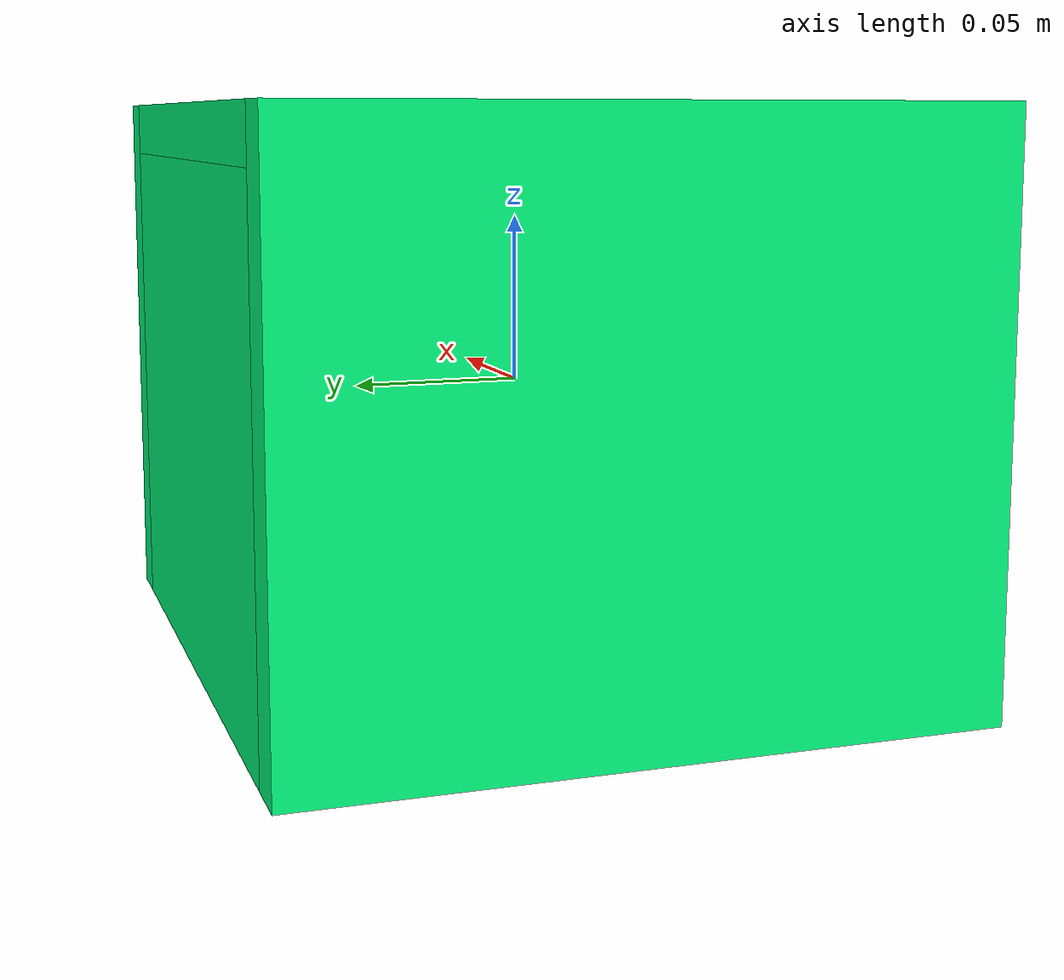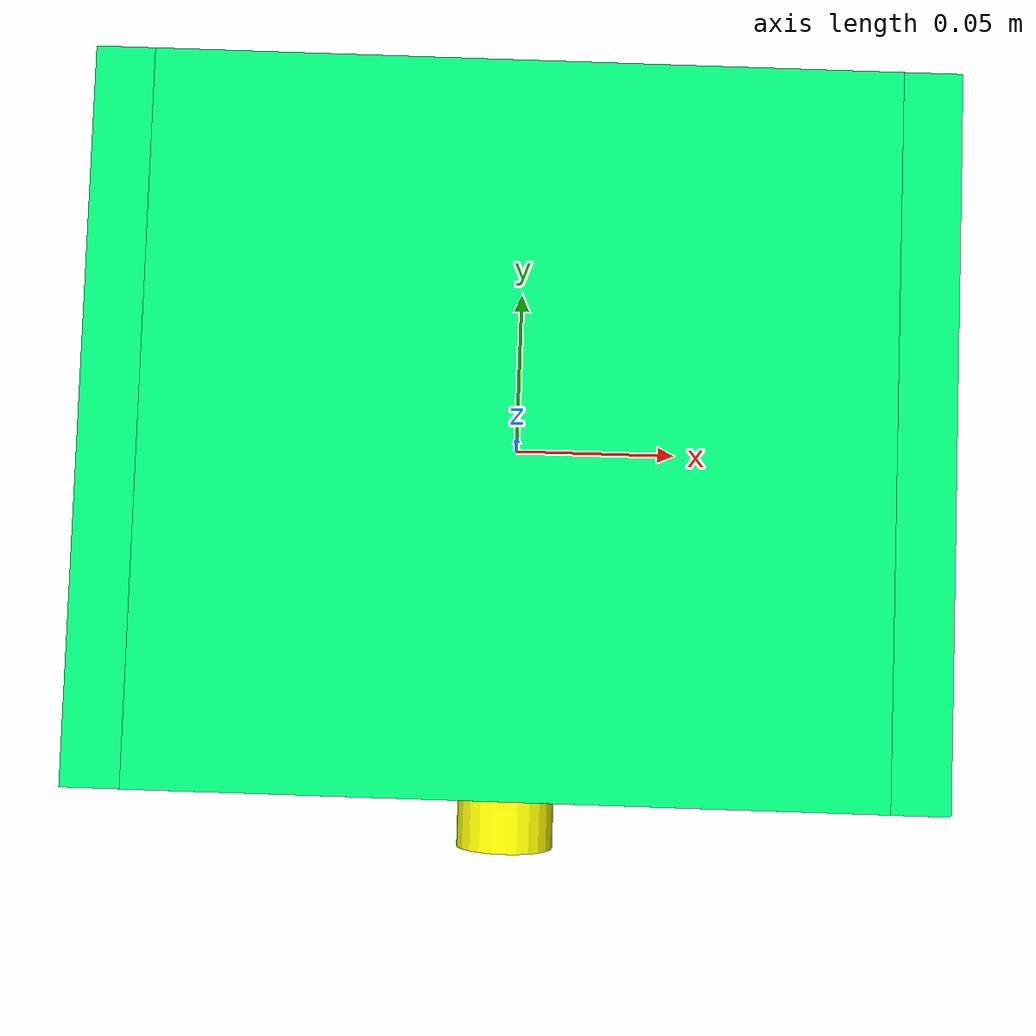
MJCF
<mujoco model="drawer">
    <worldbody>
        <body name="picked1_box1" pos="0.0 0.0 0.0" quat="1 0 0 0">

            <geom  pos="0 -0.082 0.008" size="0.1 0.008 0.052" type="box" mass=".04" friction="0.3 0.001 0.0001" priority="1"/>
            <geom  pos="0 0.082 0.008" size="0.1 0.008 0.052" type="box" mass=".04" friction="0.3 0.001 0.0001" priority="1"/>
            <geom  pos="-0.092 0 0.008" size="0.008 0.074 0.052" type="box" mass=".04" friction="0.3 0.001 0.0001" priority="1"/>
            <geom  pos="0.092 0 0.008" size="0.008 0.074 0.052" type="box" mass=".04" friction="0.3 0.001 0.0001" priority="1"/>
            <geom  pos="0 0 -0.052" size="0.1 0.09 0.008" type="box" mass=".04" friction="0.3 0.001 0.0001" priority="1"/>
            <geom  name="picked1_box" pos="0 -0.095 0" quat="1 1 0 0" rgba="1 1 0 1.0" size="0.015 0.03" type="cylinder" mass=".04" friction="0.3 0.001 0.0001" priority="1"/>

            <joint name="picked_box1_joint" type="free"/>

        </body>
        <body name="target_box1" pos="0.0 0.0 0.0" quat="1 0 0 0">

            <geom  pos="-0.11 0 0" size="0.008 0.1 0.084" rgba="0 1 0.5 1.0" type="box" mass=".05" conaffinity="1" condim="4" contype="1"/>
            <geom  pos="0.11 0 0" size="0.008 0.1 0.084" rgba="0 1 0.5 1.0" type="box" mass=".05" conaffinity="1" condim="4" contype="1"/>
            <geom  pos="0 0.092 -0.008" size="0.102 0.008 0.076" rgba="0 1 0.5 1.0" type="box" mass=".05" conaffinity="1" condim="4" contype="1"/>
            <geom  pos="0 -0.008 -0.07" size="0.102 0.092 0.014" rgba="0 1 0.5 1.0" type="box" mass=".05" conaffinity="1" condim="4" contype="1"/>
            <geom  pos="0 0 0.076" size="0.102 0.1 0.008" rgba="0 1 0.5 1.0" type="box" mass=".05" conaffinity="1" condim="4" contype="1"/>
        </body>

    </worldbody>
</mujoco>
